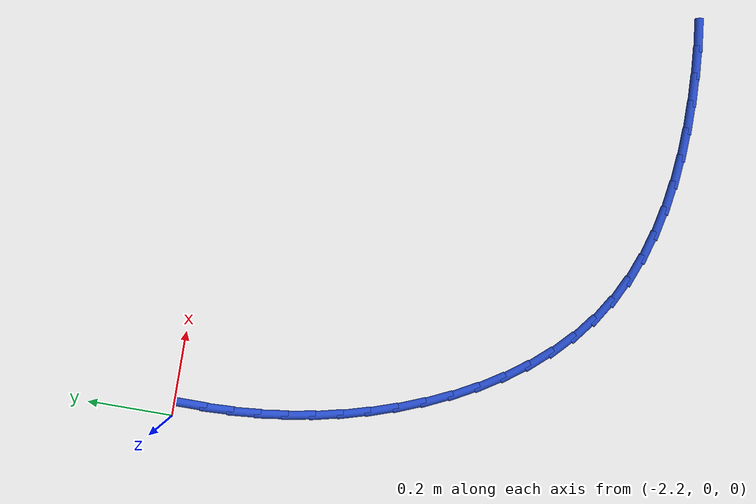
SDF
<sdf version="1.6">
 <world name="default">
  <model name="ground_plane">
   <static>1</static>
   <link name="link">
    <collision name="collision">
     <geometry><plane><normal>0 0 1</normal><size>100 100</size></plane></geometry>
     <surface><friction><ode><mu>100</mu><mu2>50</mu2></ode></friction></surface>
    </collision>
    <visual name="visual">
     <cast_shadows>0</cast_shadows>
     <geometry><plane><normal>0 0 1</normal><size>100 100</size></plane></geometry>
     <material>
      <script><uri>file://media/materials/scripts/gazebo.material</uri><name>Gazebo/WhiteGlow</name></script>
     </material>
    </visual>
   </link>
  </model>
  <model name="line">
   <link name="link_56">
    <pose>-2.163447462847257 -0.03981550393033982 0.01 0 1.57 1.5671034767252314</pose>
    <collision name="collision">
     <geometry><cylinder><radius>0.01</radius><length>0.08</length></cylinder></geometry>
    </collision>
    <visual name="visual">
     <material>
      <script><name>Gazebo/Blue</name><uri>file://media/materials/scripts/gazebo.material</uri></script>
     </material>
     <geometry><cylinder><radius>0.01</radius><length>0.08</length></cylinder></geometry>
    </visual>
   </link>
   <link name="link_57">
    <pose>-2.1636807295070564 -0.10298232495862375 0.01 0 1.57 -1.52801334119236</pose>
    <collision name="collision">
     <geometry><cylinder><radius>0.01</radius><length>0.08</length></cylinder></geometry>
    </collision>
    <visual name="visual">
     <material>
      <script><name>Gazebo/Blue</name><uri>file://media/materials/scripts/gazebo.material</uri></script>
     </material>
     <geometry><cylinder><radius>0.01</radius><length>0.08</length></cylinder></geometry>
    </visual>
   </link>
   <link name="link_58">
    <pose>-2.160971130304867 -0.16627724839771757 0.01 0 1.57 -1.4810887333820655</pose>
    <collision name="collision">
     <geometry><cylinder><radius>0.01</radius><length>0.08</length></cylinder></geometry>
    </collision>
    <visual name="visual">
     <material>
      <script><name>Gazebo/Blue</name><uri>file://media/materials/scripts/gazebo.material</uri></script>
     </material>
     <geometry><cylinder><radius>0.01</radius><length>0.08</length></cylinder></geometry>
    </visual>
   </link>
   <link name="link_59">
    <pose>-2.1552755793595577 -0.22959702213505012 0.01 0 1.57 -1.433704693191763</pose>
    <collision name="collision">
     <geometry><cylinder><radius>0.01</radius><length>0.08</length></cylinder></geometry>
    </collision>
    <visual name="visual">
     <material>
      <script><name>Gazebo/Blue</name><uri>file://media/materials/scripts/gazebo.material</uri></script>
     </material>
     <geometry><cylinder><radius>0.01</radius><length>0.08</length></cylinder></geometry>
    </visual>
   </link>
   <link name="link_60">
    <pose>-2.146550990789998 -0.292838394058047 0.01 0 1.57 -1.3858618038817705</pose>
    <collision name="collision">
     <geometry><cylinder><radius>0.01</radius><length>0.08</length></cylinder></geometry>
    </collision>
    <visual name="visual">
     <material>
      <script><name>Gazebo/Blue</name><uri>file://media/materials/scripts/gazebo.material</uri></script>
     </material>
     <geometry><cylinder><radius>0.01</radius><length>0.08</length></cylinder></geometry>
    </visual>
   </link>
   <link name="link_61">
    <pose>-2.1347542787150555 -0.3558981120541369 0.01 0 1.57 -1.3375727417742125</pose>
    <collision name="collision">
     <geometry><cylinder><radius>0.01</radius><length>0.08</length></cylinder></geometry>
    </collision>
    <visual name="visual">
     <material>
      <script><name>Gazebo/Blue</name><uri>file://media/materials/scripts/gazebo.material</uri></script>
     </material>
     <geometry><cylinder><radius>0.01</radius><length>0.08</length></cylinder></geometry>
    </visual>
   </link>
   <link name="link_62">
    <pose>-2.119842357253601 -0.4186729240107455 0.01 0 1.57 -1.2888532513479332</pose>
    <collision name="collision">
     <geometry><cylinder><radius>0.01</radius><length>0.08</length></cylinder></geometry>
    </collision>
    <visual name="visual">
     <material>
      <script><name>Gazebo/Blue</name><uri>file://media/materials/scripts/gazebo.material</uri></script>
     </material>
     <geometry><cylinder><radius>0.01</radius><length>0.08</length></cylinder></geometry>
    </visual>
   </link>
   <link name="link_63">
    <pose>-2.101772159224068 -0.48105725372207014 0.01 0 1.57 -1.2389797409041856</pose>
    <collision name="collision">
     <geometry><cylinder><radius>0.01</radius><length>0.08</length></cylinder></geometry>
    </collision>
    <visual name="visual">
     <material>
      <script><name>Gazebo/Blue</name><uri>file://media/materials/scripts/gazebo.material</uri></script>
     </material>
     <geometry><cylinder><radius>0.01</radius><length>0.08</length></cylinder></geometry>
    </visual>
   </link>
   <link name="link_64">
    <pose>-2.0805018709033636 -0.5427897377101807 0.01 0 1.57 -1.1862683875377875</pose>
    <collision name="collision">
     <geometry><cylinder><radius>0.01</radius><length>0.08</length></cylinder></geometry>
    </collision>
    <visual name="visual">
     <material>
      <script><name>Gazebo/Blue</name><uri>file://media/materials/scripts/gazebo.material</uri></script>
     </material>
     <geometry><cylinder><radius>0.01</radius><length>0.08</length></cylinder></geometry>
    </visual>
   </link>
   <link name="link_65">
    <pose>-2.055991701059118 -0.6033576453242507 0.01 0 1.57 -1.1297420568971175</pose>
    <collision name="collision">
     <geometry><cylinder><radius>0.01</radius><length>0.08</length></cylinder></geometry>
    </collision>
    <visual name="visual">
     <material>
      <script><name>Gazebo/Blue</name><uri>file://media/materials/scripts/gazebo.material</uri></script>
     </material>
     <geometry><cylinder><radius>0.01</radius><length>0.08</length></cylinder></geometry>
    </visual>
   </link>
   <link name="link_66">
    <pose>-2.0282020420883793 -0.6622254233574654 0.01 0 1.57 -1.0684805863487807</pose>
    <collision name="collision">
     <geometry><cylinder><radius>0.01</radius><length>0.08</length></cylinder></geometry>
    </collision>
    <visual name="visual">
     <material>
      <script><name>Gazebo/Blue</name><uri>file://media/materials/scripts/gazebo.material</uri></script>
     </material>
     <geometry><cylinder><radius>0.01</radius><length>0.08</length></cylinder></geometry>
    </visual>
   </link>
   <link name="link_67">
    <pose>-1.9970932863881947 -0.7188575186030088 0.01 0 1.57 -1.0015291036413683</pose>
    <collision name="collision">
     <geometry><cylinder><radius>0.01</radius><length>0.08</length></cylinder></geometry>
    </collision>
    <visual name="visual">
     <material>
      <script><name>Gazebo/Blue</name><uri>file://media/materials/scripts/gazebo.material</uri></script>
     </material>
     <geometry><cylinder><radius>0.01</radius><length>0.08</length></cylinder></geometry>
    </visual>
   </link>
   <link name="link_68">
    <pose>-1.9626258263556138 -0.7727183778540676 0.01 0 1.57 -0.9279257236341374</pose>
    <collision name="collision">
     <geometry><cylinder><radius>0.01</radius><length>0.08</length></cylinder></geometry>
    </collision>
    <visual name="visual">
     <material>
      <script><name>Gazebo/Blue</name><uri>file://media/materials/scripts/gazebo.material</uri></script>
     </material>
     <geometry><cylinder><radius>0.01</radius><length>0.08</length></cylinder></geometry>
    </visual>
   </link>
   <link name="link_69">
    <pose>-1.9247600543876844 -0.8232724479038258 0.01 0 1.57 -0.8467652028384763</pose>
    <collision name="collision">
     <geometry><cylinder><radius>0.01</radius><length>0.08</length></cylinder></geometry>
    </collision>
    <visual name="visual">
     <material>
      <script><name>Gazebo/Blue</name><uri>file://media/materials/scripts/gazebo.material</uri></script>
     </material>
     <geometry><cylinder><radius>0.01</radius><length>0.08</length></cylinder></geometry>
    </visual>
   </link>
   <link name="link_70">
    <pose>-1.8834563628814542 -0.8699841755454695 0.01 0 1.57 -0.7573118220163096</pose>
    <collision name="collision">
     <geometry><cylinder><radius>0.01</radius><length>0.08</length></cylinder></geometry>
    </collision>
    <visual name="visual">
     <material>
      <script><name>Gazebo/Blue</name><uri>file://media/materials/scripts/gazebo.material</uri></script>
     </material>
     <geometry><cylinder><radius>0.01</radius><length>0.08</length></cylinder></geometry>
    </visual>
   </link>
   <link name="link_71">
    <pose>-1.8386751442339717 -0.9123180075721833 0.01 0 1.57 -0.6591698252193989</pose>
    <collision name="collision">
     <geometry><cylinder><radius>0.01</radius><length>0.08</length></cylinder></geometry>
    </collision>
    <visual name="visual">
     <material>
      <script><name>Gazebo/Blue</name><uri>file://media/materials/scripts/gazebo.material</uri></script>
     </material>
     <geometry><cylinder><radius>0.01</radius><length>0.08</length></cylinder></geometry>
    </visual>
   </link>
   <link name="link_72">
    <pose>-1.790376790842285 -0.949738390777153 0.01 0 1.57 -0.5534987496794108</pose>
    <collision name="collision">
     <geometry><cylinder><radius>0.01</radius><length>0.08</length></cylinder></geometry>
    </collision>
    <visual name="visual">
     <material>
      <script><name>Gazebo/Blue</name><uri>file://media/materials/scripts/gazebo.material</uri></script>
     </material>
     <geometry><cylinder><radius>0.01</radius><length>0.08</length></cylinder></geometry>
    </visual>
   </link>
   <link name="link_73">
    <pose>-1.7385512719678284 -0.9817629079634317 0.01 0 1.57 -0.451116487245251</pose>
    <collision name="collision">
     <geometry><cylinder><radius>0.01</radius><length>0.08</length></cylinder></geometry>
    </collision>
    <visual name="visual">
     <material>
      <script><name>Gazebo/Blue</name><uri>file://media/materials/scripts/gazebo.material</uri></script>
     </material>
     <geometry><cylinder><radius>0.01</radius><length>0.08</length></cylinder></geometry>
    </visual>
   </link>
   <link name="link_74">
    <pose>-1.6834837301967702 -1.0084394325183244 0.01 0 1.57 -0.35855211162357253</pose>
    <collision name="collision">
     <geometry><cylinder><radius>0.01</radius><length>0.08</length></cylinder></geometry>
    </collision>
    <visual name="visual">
     <material>
      <script><name>Gazebo/Blue</name><uri>file://media/materials/scripts/gazebo.material</uri></script>
     </material>
     <geometry><cylinder><radius>0.01</radius><length>0.08</length></cylinder></geometry>
    </visual>
   </link>
   <link name="link_75">
    <pose>-1.6256289257069865 -1.0301205625595542 0.01 0 1.57 -0.2759350802589339</pose>
    <collision name="collision">
     <geometry><cylinder><radius>0.01</radius><length>0.08</length></cylinder></geometry>
    </collision>
    <visual name="visual">
     <material>
      <script><name>Gazebo/Blue</name><uri>file://media/materials/scripts/gazebo.material</uri></script>
     </material>
     <geometry><cylinder><radius>0.01</radius><length>0.08</length></cylinder></geometry>
    </visual>
   </link>
   <link name="link_76">
    <pose>-1.5654436420665463 -1.0471625313055748 0.01 0 1.57 -0.20276991753253373</pose>
    <collision name="collision">
     <geometry><cylinder><radius>0.01</radius><length>0.08</length></cylinder></geometry>
    </collision>
    <visual name="visual">
     <material>
      <script><name>Gazebo/Blue</name><uri>file://media/materials/scripts/gazebo.material</uri></script>
     </material>
     <geometry><cylinder><radius>0.01</radius><length>0.08</length></cylinder></geometry>
    </visual>
   </link>
   <link name="link_77">
    <pose>-1.5033846628435215 -1.0599215719748407 0.01 0 1.57 -0.13825716973076305</pose>
    <collision name="collision">
     <geometry><cylinder><radius>0.01</radius><length>0.08</length></cylinder></geometry>
    </collision>
    <visual name="visual">
     <material>
      <script><name>Gazebo/Blue</name><uri>file://media/materials/scripts/gazebo.material</uri></script>
     </material>
     <geometry><cylinder><radius>0.01</radius><length>0.08</length></cylinder></geometry>
    </visual>
   </link>
   <link name="link_78">
    <pose>-1.4399087716059806 -1.0687539177858052 0.01 0 1.57 -0.08147980837009075</pose>
    <collision name="collision">
     <geometry><cylinder><radius>0.01</radius><length>0.08</length></cylinder></geometry>
    </collision>
    <visual name="visual">
     <material>
      <script><name>Gazebo/Blue</name><uri>file://media/materials/scripts/gazebo.material</uri></script>
     </material>
     <geometry><cylinder><radius>0.01</radius><length>0.08</length></cylinder></geometry>
    </visual>
   </link>
   <link name="link_79">
    <pose>-1.3754727519219956 -1.0740158019569228 0.01 0 1.57 -0.0315213666988775</pose>
    <collision name="collision">
     <geometry><cylinder><radius>0.01</radius><length>0.08</length></cylinder></geometry>
    </collision>
    <visual name="visual">
     <material>
      <script><name>Gazebo/Blue</name><uri>file://media/materials/scripts/gazebo.material</uri></script>
     </material>
     <geometry><cylinder><radius>0.01</radius><length>0.08</length></cylinder></geometry>
    </visual>
   </link>
   <link name="link_80">
    <pose>-1.310533387359635 -1.0760634577066472 0.01 0 1.57 0.012468814547847042</pose>
    <collision name="collision">
     <geometry><cylinder><radius>0.01</radius><length>0.08</length></cylinder></geometry>
    </collision>
    <visual name="visual">
     <material>
      <script><name>Gazebo/Blue</name><uri>file://media/materials/scripts/gazebo.material</uri></script>
     </material>
     <geometry><cylinder><radius>0.01</radius><length>0.08</length></cylinder></geometry>
    </visual>
   </link>
   <link name="link_81">
    <pose>-1.2455474614869713 -1.075253118253433 0.01 0 1.57 0.05127182252433975</pose>
    <collision name="collision">
     <geometry><cylinder><radius>0.01</radius><length>0.08</length></cylinder></geometry>
    </collision>
    <visual name="visual">
     <material>
      <script><name>Gazebo/Blue</name><uri>file://media/materials/scripts/gazebo.material</uri></script>
     </material>
     <geometry><cylinder><radius>0.01</radius><length>0.08</length></cylinder></geometry>
    </visual>
   </link>
   <link name="link_82">
    <pose>-1.180969793526192 -1.0719391991370506 0.01 0 1.57 0.08748801212460144</pose>
    <collision name="collision">
     <geometry><cylinder><radius>0.01</radius><length>0.08</length></cylinder></geometry>
    </collision>
    <visual name="visual">
     <material>
      <script><name>Gazebo/Blue</name><uri>file://media/materials/scripts/gazebo.material</uri></script>
     </material>
     <geometry><cylinder><radius>0.01</radius><length>0.08</length></cylinder></geometry>
    </visual>
   </link>
   <link name="link_83">
    <pose>-1.117105439197563 -1.0663375344348316 0.01 0 1.57 0.1246671299929349</pose>
    <collision name="collision">
     <geometry><cylinder><radius>0.01</radius><length>0.08</length></cylinder></geometry>
    </collision>
    <visual name="visual">
     <material>
      <script><name>Gazebo/Blue</name><uri>file://media/materials/scripts/gazebo.material</uri></script>
     </material>
     <geometry><cylinder><radius>0.01</radius><length>0.08</length></cylinder></geometry>
    </visual>
   </link>
  </model>
 </world>
</sdf>
